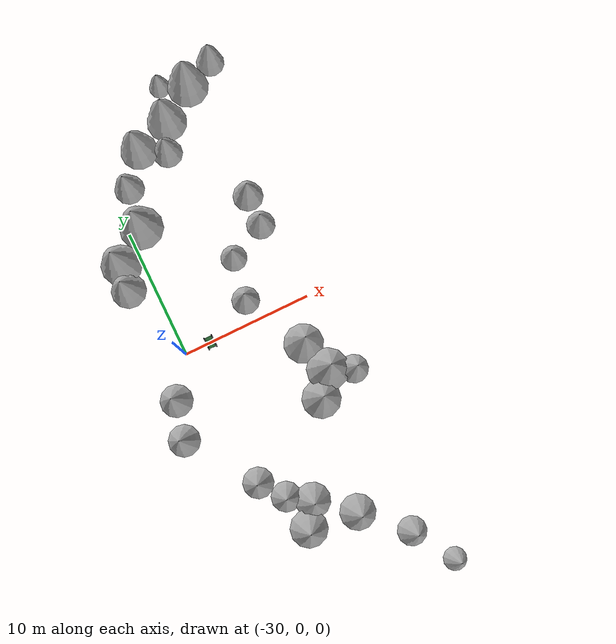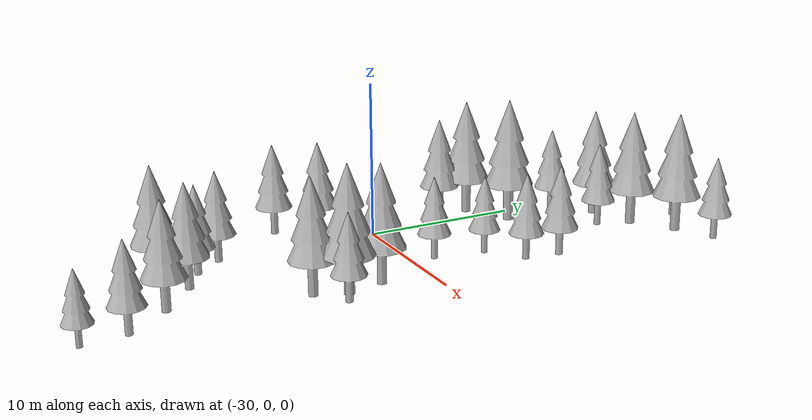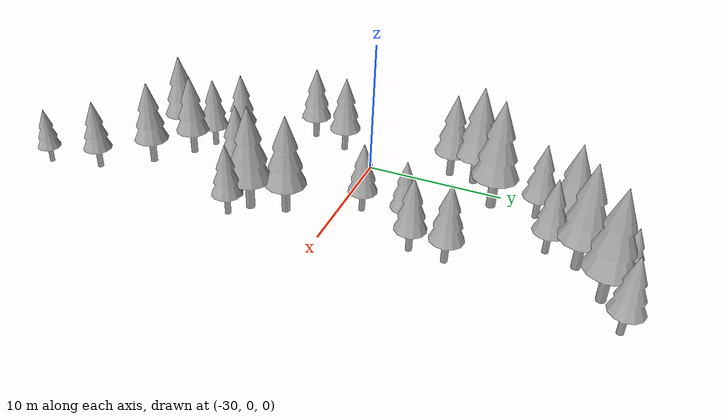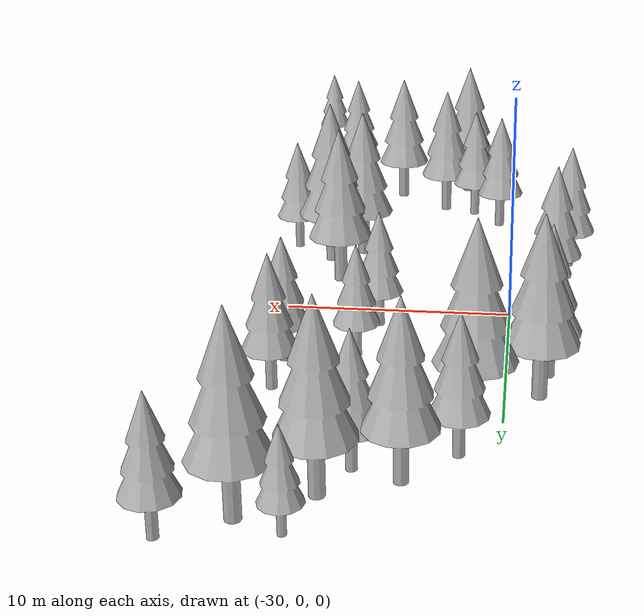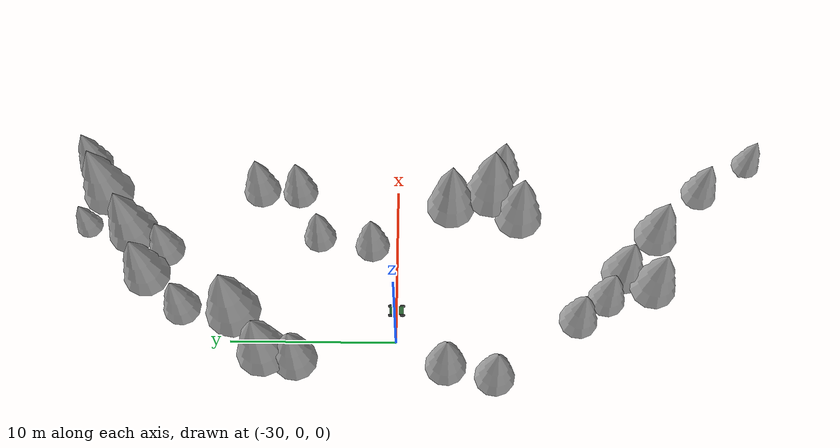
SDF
<sdf version="1.9">
 <world name="nomad_forest">
  <model name="tree_005">
   <static>true</static>
   <pose>-23.74728719564652 4.71142771278582 0.009430678626121328 0 0 5.68341908159201</pose>
   <link name="link">
    <visual name="visual">
     <geometry>
      <mesh>
       <uri>../assets/models/pine_tree.obj</uri>
       <scale>1.1037293258001493 1.1037293258001493 1.1037293258001493</scale>
      </mesh>
     </geometry>
    </visual>
    <collision name="trunk">
     <pose>0 0 1.765966921280239 0 0 0</pose>
     <geometry>
      <cylinder><radius>0.22074586516002986</radius><length>3.531933842560478</length></cylinder>
     </geometry>
    </collision>
   </link>
  </model>
  <model name="tree_010">
   <static>true</static>
   <pose>-31.69071476683939 5.799187152429241 -0.02215507995898214 0 0 1.699551294341331</pose>
   <link name="link">
    <visual name="visual">
     <geometry>
      <mesh>
       <uri>../assets/models/pine_tree.obj</uri>
       <scale>1.4601741965381356 1.4601741965381356 1.4601741965381356</scale>
      </mesh>
     </geometry>
    </visual>
    <collision name="trunk">
     <pose>0 0 2.336278714461017 0 0 0</pose>
     <geometry>
      <cylinder><radius>0.29203483930762714</radius><length>4.672557428922034</length></cylinder>
     </geometry>
    </collision>
   </link>
  </model>
  <model name="tree_027">
   <static>true</static>
   <pose>-32.656983271442016 -5.753634908888614 0.21888108581349097 0 0 2.712591995568711</pose>
   <link name="link">
    <visual name="visual">
     <geometry>
      <mesh>
       <uri>../assets/models/pine_tree.obj</uri>
       <scale>1.3163363295710189 1.3163363295710189 1.3163363295710189</scale>
      </mesh>
     </geometry>
    </visual>
    <collision name="trunk">
     <pose>0 0 2.1061381273136304 0 0 0</pose>
     <geometry>
      <cylinder><radius>0.2632672659142038</radius><length>4.212276254627261</length></cylinder>
     </geometry>
    </collision>
   </link>
  </model>
  <model name="tree_033">
   <static>true</static>
   <pose>-23.739253999120052 -15.622844189202766 0.1153574259995338 0 0 1.2297393752088968</pose>
   <link name="link">
    <visual name="visual">
     <geometry>
      <mesh>
       <uri>../assets/models/pine_tree.obj</uri>
       <scale>1.4612864012952456 1.4612864012952456 1.4612864012952456</scale>
      </mesh>
     </geometry>
    </visual>
    <collision name="trunk">
     <pose>0 0 2.338058242072393 0 0 0</pose>
     <geometry>
      <cylinder><radius>0.2922572802590491</radius><length>4.676116484144786</length></cylinder>
     </geometry>
    </collision>
   </link>
  </model>
  <model name="tree_037">
   <static>true</static>
   <pose>-26.236115699963612 -13.504457012007546 0.16057850078164362 0 0 3.585415213021652</pose>
   <link name="link">
    <visual name="visual">
     <geometry>
      <mesh>
       <uri>../assets/models/pine_tree.obj</uri>
       <scale>1.437822450414941 1.437822450414941 1.437822450414941</scale>
      </mesh>
     </geometry>
    </visual>
    <collision name="trunk">
     <pose>0 0 2.300515920663906 0 0 0</pose>
     <geometry>
      <cylinder><radius>0.28756449008298823</radius><length>4.601031841327812</length></cylinder>
     </geometry>
    </collision>
   </link>
  </model>
  <model name="tree_042">
   <static>true</static>
   <pose>-29.18652233858538 -10.725371664027968 0.35534283526409133 0 0 1.710666110183999</pose>
   <link name="link">
    <visual name="visual">
     <geometry>
      <mesh>
       <uri>../assets/models/pine_tree.obj</uri>
       <scale>1.2694490893673749 1.2694490893673749 1.2694490893673749</scale>
      </mesh>
     </geometry>
    </visual>
    <collision name="trunk">
     <pose>0 0 2.0311185429878 0 0 0</pose>
     <geometry><cylinder><radius>0.253889817873475</radius><length>4.0622370859756</length></cylinder></geometry>
    </collision>
   </link>
  </model>
  <model name="tree_050">
   <static>true</static>
   <pose>-22.528222273151854 -7.353233757469077 -0.10902726072797081 0 0 5.37809941848425</pose>
   <link name="link">
    <visual name="visual">
     <geometry>
      <mesh>
       <uri>../assets/models/pine_tree.obj</uri>
       <scale>1.6044228122951985 1.6044228122951985 1.6044228122951985</scale>
      </mesh>
     </geometry>
    </visual>
    <collision name="trunk">
     <pose>0 0 2.567076499672318 0 0 0</pose>
     <geometry>
      <cylinder><radius>0.32088456245903973</radius><length>5.134152999344636</length></cylinder>
     </geometry>
    </collision>
   </link>
  </model>
  <model name="tree_053">
   <static>true</static>
   <pose>-19.454563290203577 -6.444492305446776 0.4661522673060686 0 0 1.751435295693052</pose>
   <link name="link">
    <visual name="visual">
     <geometry>
      <mesh>
       <uri>../assets/models/pine_tree.obj</uri>
       <scale>1.1809182876905497 1.1809182876905497 1.1809182876905497</scale>
      </mesh>
     </geometry>
    </visual>
    <collision name="trunk">
     <pose>0 0 1.8894692603048797 0 0 0</pose>
     <geometry>
      <cylinder><radius>0.23618365753810996</radius><length>3.7789385206097594</length></cylinder>
     </geometry>
    </collision>
   </link>
  </model>
  <model name="tree_054">
   <static>true</static>
   <pose>-28.481551397186305 12.689320493782844 0.05267729503384749 0 0 4.343758265578293</pose>
   <link name="link">
    <visual name="visual">
     <geometry>
      <mesh>
       <uri>../assets/models/pine_tree.obj</uri>
       <scale>1.2595461972461752 1.2595461972461752 1.2595461972461752</scale>
      </mesh>
     </geometry>
    </visual>
    <collision name="trunk">
     <pose>0 0 2.0152739155938804 0 0 0</pose>
     <geometry>
      <cylinder><radius>0.25190923944923505</radius><length>4.030547831187761</length></cylinder>
     </geometry>
    </collision>
   </link>
  </model>
  <model name="tree_059">
   <static>true</static>
   <pose>-31.964217781927935 -2.936461379875759 0.0 0 0 5.911413301086224</pose>
   <link name="link">
    <visual name="visual">
     <geometry>
      <mesh>
       <uri>../assets/models/pine_tree.obj</uri>
       <scale>1.3568447631971734 1.3568447631971734 1.3568447631971734</scale>
      </mesh>
     </geometry>
    </visual>
    <collision name="trunk">
     <pose>0 0 2.1709516211154773 0 0 0</pose>
     <geometry>
      <cylinder><radius>0.27136895263943467</radius><length>4.341903242230955</length></cylinder>
     </geometry>
    </collision>
   </link>
  </model>
  <model name="tree_066">
   <static>true</static>
   <pose>-24.32741554638034 1.4943120799815333 0.0 0 0 0.05663431140513494</pose>
   <link name="link">
    <visual name="visual">
     <geometry>
      <mesh>
       <uri>../assets/models/pine_tree.obj</uri>
       <scale>1.16634691332975 1.16634691332975 1.16634691332975</scale>
      </mesh>
     </geometry>
    </visual>
    <collision name="trunk">
     <pose>0 0 1.8661550613276 0 0 0</pose>
     <geometry><cylinder><radius>0.23326938266595</radius><length>3.7323101226552</length></cylinder></geometry>
    </collision>
   </link>
  </model>
  <model name="tree_102">
   <static>true</static>
   <pose>-20.918706636194234 6.006033082981453 0.3098943282150593 0 0 6.253051255335334</pose>
   <link name="link">
    <visual name="visual">
     <geometry>
      <mesh>
       <uri>../assets/models/pine_tree.obj</uri>
       <scale>1.198435194205103 1.198435194205103 1.198435194205103</scale>
      </mesh>
     </geometry>
    </visual>
    <collision name="trunk">
     <pose>0 0 1.9174963107281648 0 0 0</pose>
     <geometry>
      <cylinder><radius>0.2396870388410206</radius><length>3.8349926214563297</length></cylinder>
     </geometry>
    </collision>
   </link>
  </model>
  <model name="tree_106">
   <static>true</static>
   <pose>-19.057626697485098 -21.429688175406504 1.1408397657122222 0 0 1.000990727459679</pose>
   <link name="link">
    <visual name="visual">
     <geometry>
      <mesh>
       <uri>../assets/models/pine_tree.obj</uri>
       <scale>0.9429300864191067 0.9429300864191067 0.9429300864191067</scale>
      </mesh>
     </geometry>
    </visual>
    <collision name="trunk">
     <pose>0 0 1.5086881382705708 0 0 0</pose>
     <geometry>
      <cylinder><radius>0.18858601728382135</radius><length>3.0173762765411416</length></cylinder>
     </geometry>
    </collision>
   </link>
  </model>
  <model name="tree_132">
   <static>true</static>
   <pose>-23.159342853530227 18.844382334908275 0.38741092598045135 0 0 2.6802246936426855</pose>
   <link name="link">
    <visual name="visual">
     <geometry>
      <mesh>
       <uri>../assets/models/pine_tree.obj</uri>
       <scale>0.8939544678904451 0.8939544678904451 0.8939544678904451</scale>
      </mesh>
     </geometry>
    </visual>
    <collision name="trunk">
     <pose>0 0 1.4303271486247122 0 0 0</pose>
     <geometry>
      <cylinder><radius>0.17879089357808903</radius><length>2.8606542972494244</length></cylinder>
     </geometry>
    </collision>
   </link>
  </model>
  <model name="tree_149">
   <static>true</static>
   <pose>-21.290001374066875 17.669566322876655 0.09880520469758874 0 0 1.309578482517985</pose>
   <link name="link">
    <visual name="visual">
     <geometry>
      <mesh>
       <uri>../assets/models/pine_tree.obj</uri>
       <scale>1.727077925911875 1.727077925911875 1.727077925911875</scale>
      </mesh>
     </geometry>
    </visual>
    <collision name="trunk">
     <pose>0 0 2.7633246814590002 0 0 0</pose>
     <geometry>
      <cylinder><radius>0.34541558518237503</radius><length>5.5266493629180005</length></cylinder>
     </geometry>
    </collision>
   </link>
  </model>
  <model name="tree_169">
   <static>true</static>
   <pose>-28.890428150434044 9.546520334025303 -0.16239685023295294 0 0 1.6575078633481515</pose>
   <link name="link">
    <visual name="visual">
     <geometry>
      <mesh>
       <uri>../assets/models/pine_tree.obj</uri>
       <scale>1.831440181913472 1.831440181913472 1.831440181913472</scale>
      </mesh>
     </geometry>
    </visual>
    <collision name="trunk">
     <pose>0 0 2.9303042910615553 0 0 0</pose>
     <geometry>
      <cylinder><radius>0.3662880363826944</radius><length>5.860608582123111</length></cylinder>
     </geometry>
    </collision>
   </link>
  </model>
  <model name="tree_187">
   <static>true</static>
   <pose>-21.205003084000232 -5.659460622533775 0.1432419591692561 0 0 3.2308542033279815</pose>
   <link name="link">
    <visual name="visual">
     <geometry>
      <mesh>
       <uri>../assets/models/pine_tree.obj</uri>
       <scale>1.7431405728085718 1.7431405728085718 1.7431405728085718</scale>
      </mesh>
     </geometry>
    </visual>
    <collision name="trunk">
     <pose>0 0 2.789024916493715 0 0 0</pose>
     <geometry><cylinder><radius>0.3486281145617144</radius><length>5.57804983298743</length></cylinder></geometry>
    </collision>
   </link>
  </model>
  <model name="tree_191">
   <static>true</static>
   <pose>-26.60471211196358 14.85861522068194 0.14817895730097064 0 0 2.9267937099276815</pose>
   <link name="link">
    <visual name="visual">
     <geometry>
      <mesh>
       <uri>../assets/models/pine_tree.obj</uri>
       <scale>1.5670582890273161 1.5670582890273161 1.5670582890273161</scale>
      </mesh>
     </geometry>
    </visual>
    <collision name="trunk">
     <pose>0 0 2.507293262443706 0 0 0</pose>
     <geometry>
      <cylinder><radius>0.31341165780546326</radius><length>5.014586524887412</length></cylinder>
     </geometry>
    </collision>
   </link>
  </model>
  <model name="tree_193">
   <static>true</static>
   <pose>-21.944750474128845 -3.2443358374040088 0.08017625818207312 0 0 3.959908846160471</pose>
   <link name="link">
    <visual name="visual">
     <geometry>
      <mesh>
       <uri>../assets/models/pine_tree.obj</uri>
       <scale>1.635050891167773 1.635050891167773 1.635050891167773</scale>
      </mesh>
     </geometry>
    </visual>
    <collision name="trunk">
     <pose>0 0 2.616081425868437 0 0 0</pose>
     <geometry>
      <cylinder><radius>0.3270101782335546</radius><length>5.232162851736874</length></cylinder>
     </geometry>
    </collision>
   </link>
  </model>
  <model name="tree_195">
   <static>true</static>
   <pose>-27.820192577309534 -12.461604070276303 0.3143378219788374 0 0 3.2297304472959834</pose>
   <link name="link">
    <visual name="visual">
     <geometry>
      <mesh>
       <uri>../assets/models/pine_tree.obj</uri>
       <scale>1.2323164086703433 1.2323164086703433 1.2323164086703433</scale>
      </mesh>
     </geometry>
    </visual>
    <collision name="trunk">
     <pose>0 0 1.9717062538725494 0 0 0</pose>
     <geometry>
      <cylinder><radius>0.24646328173406867</radius><length>3.9434125077450988</length></cylinder>
     </geometry>
    </collision>
   </link>
  </model>
  <model name="tree_201">
   <static>true</static>
   <pose>-18.919462968653793 18.92948253076589 0.06176844918102018 0 0 3.1053862988889263</pose>
   <link name="link">
    <visual name="visual">
     <geometry>
      <mesh>
       <uri>../assets/models/pine_tree.obj</uri>
       <scale>1.1886053868972941 1.1886053868972941 1.1886053868972941</scale>
      </mesh>
     </geometry>
    </visual>
    <collision name="trunk">
     <pose>0 0 1.9017686190356706 0 0 0</pose>
     <geometry>
      <cylinder><radius>0.23772107737945883</radius><length>3.8035372380713413</length></cylinder>
     </geometry>
    </collision>
   </link>
  </model>
  <model name="tree_209">
   <static>true</static>
   <pose>-23.832787632649236 15.938286187444312 0.09290860907922273 0 0 4.59807876183276</pose>
   <link name="link">
    <visual name="visual">
     <geometry>
      <mesh>
       <uri>../assets/models/pine_tree.obj</uri>
       <scale>1.6708734816083899 1.6708734816083899 1.6708734816083899</scale>
      </mesh>
     </geometry>
    </visual>
    <collision name="trunk">
     <pose>0 0 2.673397570573424 0 0 0</pose>
     <geometry><cylinder><radius>0.334174696321678</radius><length>5.346795141146848</length></cylinder></geometry>
    </collision>
   </link>
  </model>
  <model name="tree_219">
   <static>true</static>
   <pose>-31.35182375927484 7.682800255087464 -0.027776944971528297 0 0 3.2952240078451007</pose>
   <link name="link">
    <visual name="visual">
     <geometry>
      <mesh>
       <uri>../assets/models/pine_tree.obj</uri>
       <scale>1.7078063317035546 1.7078063317035546 1.7078063317035546</scale>
      </mesh>
     </geometry>
    </visual>
    <collision name="trunk">
     <pose>0 0 2.7324901307256875 0 0 0</pose>
     <geometry>
      <cylinder><radius>0.34156126634071093</radius><length>5.464980261451375</length></cylinder>
     </geometry>
    </collision>
   </link>
  </model>
  <model name="tree_223">
   <static>true</static>
   <pose>-20.82746606356558 8.359626376795788 0.21306184891333665 0 0 3.751745175512626</pose>
   <link name="link">
    <visual name="visual">
     <geometry>
      <mesh>
       <uri>../assets/models/pine_tree.obj</uri>
       <scale>1.2654663257973147 1.2654663257973147 1.2654663257973147</scale>
      </mesh>
     </geometry>
    </visual>
    <collision name="trunk">
     <pose>0 0 2.0247461212757036 0 0 0</pose>
     <geometry>
      <cylinder><radius>0.25309326515946295</radius><length>4.049492242551407</length></cylinder>
     </geometry>
    </collision>
   </link>
  </model>
  <model name="tree_225">
   <static>true</static>
   <pose>-24.75265672608075 13.95472760592856 0.016434496460247396 0 0 0.65510919115056</pose>
   <link name="link">
    <visual name="visual">
     <geometry>
      <mesh>
       <uri>../assets/models/pine_tree.obj</uri>
       <scale>1.2242497348314314 1.2242497348314314 1.2242497348314314</scale>
      </mesh>
     </geometry>
    </visual>
    <collision name="trunk">
     <pose>0 0 1.9587995757302903 0 0 0</pose>
     <geometry>
      <cylinder><radius>0.24484994696628629</radius><length>3.9175991514605806</length></cylinder>
     </geometry>
    </collision>
   </link>
  </model>
  <model name="tree_227">
   <static>true</static>
   <pose>-20.869831322491304 -18.468411582610127 0.45367941695691116 0 0 4.410172546910359</pose>
   <link name="link">
    <visual name="visual">
     <geometry>
      <mesh>
       <uri>../assets/models/pine_tree.obj</uri>
       <scale>1.1961725272957475 1.1961725272957475 1.1961725272957475</scale>
      </mesh>
     </geometry>
    </visual>
    <collision name="trunk">
     <pose>0 0 1.913876043673196 0 0 0</pose>
     <geometry>
      <cylinder><radius>0.2392345054591495</radius><length>3.827752087346392</length></cylinder>
     </geometry>
    </collision>
   </link>
  </model>
  <model name="tree_230">
   <static>true</static>
   <pose>-27.337269116462902 -15.092706891975292 0.7383270753649412 0 0 2.2034127779739237</pose>
   <link name="link">
    <visual name="visual">
     <geometry>
      <mesh>
       <uri>../assets/models/pine_tree.obj</uri>
       <scale>1.5140564023305885 1.5140564023305885 1.5140564023305885</scale>
      </mesh>
     </geometry>
    </visual>
    <collision name="trunk">
     <pose>0 0 2.4224902437289417 0 0 0</pose>
     <geometry>
      <cylinder><radius>0.3028112804661177</radius><length>4.8449804874578835</length></cylinder>
     </geometry>
    </collision>
   </link>
  </model>
  <model name="nomad_vehicle" canonical_link="base_link">
   <static>false</static>
   <link name="base_link">
    <pose relative_to="__model__">0 0 0 0 0 0</pose>
    <inertial>
     <pose>0 0 0.2 0 0 0</pose>
     <mass>30</mass>
     <inertia><ixx>0.661</ixx><iyy>1.84225</iyy><izz>2.43125</izz><ixy>0</ixy><ixz>0</ixz><iyz>0</iyz></inertia>
    </inertial>
    <visual name="base_link_visual">
     <pose>0 0 0.2 0 0 0</pose>
     <geometry><box><size>0.85 0.5 0.12</size></box></geometry>
     <material><ambient>0.15 0.38 0.18 1</ambient><diffuse>0.15 0.38 0.18 1</diffuse></material>
    </visual>
    <collision name="base_link_collision">
     <pose>0 0 0.2 0 0 0</pose>
     <geometry><box><size>0.85 0.5 0.12</size></box></geometry>
    </collision>
    <sensor name="oak_rgb" type="rgbd_camera">
     <pose relative_to="base_link">0.46 0 0.29 0 0 0</pose>
     <always_on>true</always_on>
     <update_rate>30</update_rate>
     <visualize>false</visualize>
     <topic>/nomad/raw/oak/rgbd</topic>
     <gz_frame_id>oak_rgb_optical_frame</gz_frame_id>
     <camera>
      <optical_frame_id>oak_rgb_optical_frame</optical_frame_id>
      <horizontal_fov>1.20427718387609</horizontal_fov>
      <image><width>640</width><height>480</height><format>R8G8B8</format></image>
      <clip><near>0.05</near><far>40</far></clip>
      <depth_camera><clip><near>0.4</near><far>8</far></clip></depth_camera>
      <lens>
       <type>gnomonical</type>
       <intrinsics><fx>465.602889175182</fx><fy>471.026521321236</fy><cx>320</cx><cy>240</cy><s>0</s></intrinsics>
       <projection>
        <p_fx>465.602889175182</p_fx>
        <p_fy>471.026521321236</p_fy>
        <p_cx>320</p_cx>
        <p_cy>240</p_cy>
        <tx>0</tx>
        <ty>0</ty>
       </projection>
      </lens>
     </camera>
    </sensor>
    <sensor name="oak_left" type="camera">
     <pose relative_to="base_link">0.46 0.0375 0.29 0 0 0</pose>
     <always_on>true</always_on>
     <update_rate>30</update_rate>
     <visualize>false</visualize>
     <topic>/nomad/raw/oak/left/image_raw</topic>
     <gz_frame_id>oak_left_optical_frame</gz_frame_id>
     <camera>
      <optical_frame_id>oak_left_optical_frame</optical_frame_id>
      <camera_info_topic>/nomad/raw/oak/left/camera_info</camera_info_topic>
      <horizontal_fov>1.27409035395586</horizontal_fov>
      <image><width>640</width><height>480</height><format>L8</format></image>
      <clip><near>0.05</near><far>40</far></clip>
      <lens>
       <type>gnomonical</type>
       <intrinsics><fx>432.455180142659</fx><fy>432.971461265142</fy><cx>320</cx><cy>240</cy><s>0</s></intrinsics>
       <projection>
        <p_fx>432.455180142659</p_fx>
        <p_fy>432.971461265142</p_fy>
        <p_cx>320</p_cx>
        <p_cy>240</p_cy>
        <tx>0</tx>
        <ty>0</ty>
       </projection>
      </lens>
     </camera>
    </sensor>
    <sensor name="oak_right" type="camera">
     <pose relative_to="base_link">0.46 -0.0375 0.29 0 0 0</pose>
     <always_on>true</always_on>
     <update_rate>30</update_rate>
     <visualize>false</visualize>
     <topic>/nomad/raw/oak/right/image_raw</topic>
     <gz_frame_id>oak_right_optical_frame</gz_frame_id>
     <camera>
      <optical_frame_id>oak_right_optical_frame</optical_frame_id>
      <camera_info_topic>/nomad/raw/oak/right/camera_info</camera_info_topic>
      <horizontal_fov>1.27409035395586</horizontal_fov>
      <image><width>640</width><height>480</height><format>L8</format></image>
      <clip><near>0.05</near><far>40</far></clip>
      <lens>
       <type>gnomonical</type>
       <intrinsics><fx>432.455180142659</fx><fy>432.971461265142</fy><cx>320</cx><cy>240</cy><s>0</s></intrinsics>
       <projection>
        <p_fx>432.455180142659</p_fx>
        <p_fy>432.971461265142</p_fy>
        <p_cx>320</p_cx>
        <p_cy>240</p_cy>
        <tx>-32.4341385106994</tx>
        <ty>0</ty>
       </projection>
      </lens>
     </camera>
    </sensor>
    <sensor name="ydlidar_g2" type="gpu_lidar">
     <pose relative_to="base_link">0.15 0 0.38 0 0 0</pose>
     <topic>/nomad/raw/scan</topic>
     <gz_frame_id>scan</gz_frame_id>
     <always_on>true</always_on>
     <update_rate>10</update_rate>
     <visualize>false</visualize>
     <lidar>
      <scan>
       <horizontal>
        <samples>500</samples>
        <resolution>1</resolution>
        <min_angle>-3.14159265358979</min_angle>
        <max_angle>3.12902628297543</max_angle>
       </horizontal>
       <vertical>
        <samples>1</samples>
        <resolution>1</resolution>
        <min_angle>0</min_angle>
        <max_angle>0</max_angle>
       </vertical>
      </scan>
      <range><min>0.12</min><max>12</max><resolution>0.01</resolution></range>
      <noise><type>gaussian</type><mean>0</mean><stddev>0.01</stddev></noise>
     </lidar>
    </sensor>
    <sensor name="oak_imu" type="imu">
     <pose relative_to="base_link">0.46 0 0.29 0 0 0</pose>
     <always_on>true</always_on>
     <update_rate>200</update_rate>
     <topic>/nomad/raw/oak/imu</topic>
     <gz_frame_id>oak_imu_frame</gz_frame_id>
    </sensor>
   </link>
   <link name="front_left_steering_link">
    <pose relative_to="__model__">0.36 0.3 0.15 0 0 0</pose>
    <inertial>
     <mass>0.3</mass>
     <inertia>
      <ixx>8.6875e-05</ixx>
      <iyy>8.6875e-05</iyy>
      <izz>9.375e-05</izz>
      <ixy>0</ixy>
      <ixz>0</ixz>
      <iyz>0</iyz>
     </inertia>
    </inertial>
    <visual name="front_left_steering_link_visual">
     <geometry><cylinder><radius>0.025</radius><length>0.04</length></cylinder></geometry>
     <material><ambient>0.12 0.12 0.12 1</ambient><diffuse>0.12 0.12 0.12 1</diffuse></material>
    </visual>
   </link>
   <link name="front_left_wheel">
    <pose relative_to="__model__">0.36 0.3 0.15 0 0 0</pose>
    <inertial>
     <mass>1</mass>
     <inertia>
      <ixx>0.00615833333333333</ixx>
      <iyy>0.01125</iyy>
      <izz>0.00615833333333333</izz>
      <ixy>0</ixy>
      <ixz>0</ixz>
      <iyz>0</iyz>
     </inertia>
    </inertial>
    <visual name="front_left_wheel_visual">
     <pose>0 0 0 1.5707963267949 0 0</pose>
     <geometry><cylinder><radius>0.15</radius><length>0.08</length></cylinder></geometry>
     <material><ambient>0.12 0.12 0.12 1</ambient><diffuse>0.12 0.12 0.12 1</diffuse></material>
    </visual>
    <collision name="front_left_wheel_collision">
     <pose>0 0 0 1.5707963267949 0 0</pose>
     <geometry><cylinder><radius>0.15</radius><length>0.08</length></cylinder></geometry>
     <surface><friction><ode><mu>1</mu><mu2>1</mu2></ode></friction></surface>
    </collision>
   </link>
   <link name="front_right_steering_link">
    <pose relative_to="__model__">0.36 -0.3 0.15 0 0 0</pose>
    <inertial>
     <mass>0.3</mass>
     <inertia>
      <ixx>8.6875e-05</ixx>
      <iyy>8.6875e-05</iyy>
      <izz>9.375e-05</izz>
      <ixy>0</ixy>
      <ixz>0</ixz>
      <iyz>0</iyz>
     </inertia>
    </inertial>
    <visual name="front_right_steering_link_visual">
     <geometry><cylinder><radius>0.025</radius><length>0.04</length></cylinder></geometry>
     <material><ambient>0.12 0.12 0.12 1</ambient><diffuse>0.12 0.12 0.12 1</diffuse></material>
    </visual>
   </link>
   <link name="front_right_wheel">
    <pose relative_to="__model__">0.36 -0.3 0.15 0 0 0</pose>
    <inertial>
     <mass>1</mass>
     <inertia>
      <ixx>0.00615833333333333</ixx>
      <iyy>0.01125</iyy>
      <izz>0.00615833333333333</izz>
      <ixy>0</ixy>
      <ixz>0</ixz>
      <iyz>0</iyz>
     </inertia>
    </inertial>
    <visual name="front_right_wheel_visual">
     <pose>0 0 0 1.5707963267949 0 0</pose>
     <geometry><cylinder><radius>0.15</radius><length>0.08</length></cylinder></geometry>
     <material><ambient>0.12 0.12 0.12 1</ambient><diffuse>0.12 0.12 0.12 1</diffuse></material>
    </visual>
    <collision name="front_right_wheel_collision">
     <pose>0 0 0 1.5707963267949 0 0</pose>
     <geometry><cylinder><radius>0.15</radius><length>0.08</length></cylinder></geometry>
     <surface><friction><ode><mu>1</mu><mu2>1</mu2></ode></friction></surface>
    </collision>
   </link>
   <link name="rear_left_wheel">
    <pose relative_to="__model__">-0.36 0.3 0.15 0 0 0</pose>
    <inertial>
     <mass>1</mass>
     <inertia>
      <ixx>0.00615833333333333</ixx>
      <iyy>0.01125</iyy>
      <izz>0.00615833333333333</izz>
      <ixy>0</ixy>
      <ixz>0</ixz>
      <iyz>0</iyz>
     </inertia>
    </inertial>
    <visual name="rear_left_wheel_visual">
     <pose>0 0 0 1.5707963267949 0 0</pose>
     <geometry><cylinder><radius>0.15</radius><length>0.08</length></cylinder></geometry>
     <material><ambient>0.12 0.12 0.12 1</ambient><diffuse>0.12 0.12 0.12 1</diffuse></material>
    </visual>
    <collision name="rear_left_wheel_collision">
     <pose>0 0 0 1.5707963267949 0 0</pose>
     <geometry><cylinder><radius>0.15</radius><length>0.08</length></cylinder></geometry>
     <surface><friction><ode><mu>1</mu><mu2>1</mu2></ode></friction></surface>
    </collision>
   </link>
   <link name="rear_right_wheel">
    <pose relative_to="__model__">-0.36 -0.3 0.15 0 0 0</pose>
    <inertial>
     <mass>1</mass>
     <inertia>
      <ixx>0.00615833333333333</ixx>
      <iyy>0.01125</iyy>
      <izz>0.00615833333333333</izz>
      <ixy>0</ixy>
      <ixz>0</ixz>
      <iyz>0</iyz>
     </inertia>
    </inertial>
    <visual name="rear_right_wheel_visual">
     <pose>0 0 0 1.5707963267949 0 0</pose>
     <geometry><cylinder><radius>0.15</radius><length>0.08</length></cylinder></geometry>
     <material><ambient>0.12 0.12 0.12 1</ambient><diffuse>0.12 0.12 0.12 1</diffuse></material>
    </visual>
    <collision name="rear_right_wheel_collision">
     <pose>0 0 0 1.5707963267949 0 0</pose>
     <geometry><cylinder><radius>0.15</radius><length>0.08</length></cylinder></geometry>
     <surface><friction><ode><mu>1</mu><mu2>1</mu2></ode></friction></surface>
    </collision>
   </link>
   <joint name="front_left_steering_joint" type="revolute">
    <parent>base_link</parent>
    <child>front_left_steering_link</child>
    <pose relative_to="front_left_steering_link">0 0 0 0 0 0</pose>
    <axis>
     <xyz>0 0 1</xyz>
     <limit><lower>-0.55</lower><upper>0.55</upper><effort>12</effort><velocity>2</velocity></limit>
     <dynamics><damping>0.02</damping></dynamics>
    </axis>
   </joint>
   <joint name="front_left_wheel_joint" type="revolute">
    <parent>front_left_steering_link</parent>
    <child>front_left_wheel</child>
    <pose relative_to="front_left_wheel">0 0 0 0 0 0</pose>
    <axis>
     <xyz>0 1 0</xyz>
     <limit><lower>-1e+16</lower><upper>1e+16</upper><effort>20</effort><velocity>20</velocity></limit>
     <dynamics><damping>0.02</damping></dynamics>
    </axis>
   </joint>
   <joint name="front_right_steering_joint" type="revolute">
    <parent>base_link</parent>
    <child>front_right_steering_link</child>
    <pose relative_to="front_right_steering_link">0 0 0 0 0 0</pose>
    <axis>
     <xyz>0 0 1</xyz>
     <limit><lower>-0.55</lower><upper>0.55</upper><effort>12</effort><velocity>2</velocity></limit>
     <dynamics><damping>0.02</damping></dynamics>
    </axis>
   </joint>
   <joint name="front_right_wheel_joint" type="revolute">
    <parent>front_right_steering_link</parent>
    <child>front_right_wheel</child>
    <pose relative_to="front_right_wheel">0 0 0 0 0 0</pose>
    <axis>
     <xyz>0 1 0</xyz>
     <limit><lower>-1e+16</lower><upper>1e+16</upper><effort>20</effort><velocity>20</velocity></limit>
     <dynamics><damping>0.02</damping></dynamics>
    </axis>
   </joint>
   <joint name="rear_left_wheel_joint" type="revolute">
    <parent>base_link</parent>
    <child>rear_left_wheel</child>
    <pose relative_to="rear_left_wheel">0 0 0 0 0 0</pose>
    <axis>
     <xyz>0 1 0</xyz>
     <limit><lower>-1e+16</lower><upper>1e+16</upper><effort>20</effort><velocity>20</velocity></limit>
     <dynamics><damping>0.02</damping></dynamics>
    </axis>
   </joint>
   <joint name="rear_right_wheel_joint" type="revolute">
    <parent>base_link</parent>
    <child>rear_right_wheel</child>
    <pose relative_to="rear_right_wheel">0 0 0 0 0 0</pose>
    <axis>
     <xyz>0 1 0</xyz>
     <limit><lower>-1e+16</lower><upper>1e+16</upper><effort>20</effort><velocity>20</velocity></limit>
     <dynamics><damping>0.02</damping></dynamics>
    </axis>
   </joint>
   <frame name="oak_rgb_optical_frame" attached_to="base_link">
    <pose relative_to="base_link">0.46 0 0.29 -1.5707963267949 0 -1.5707963267949</pose>
   </frame>
   <frame name="oak_depth_optical_frame" attached_to="base_link">
    <pose relative_to="base_link">0.46 0 0.29 -1.5707963267949 0 -1.5707963267949</pose>
   </frame>
   <frame name="oak_left_optical_frame" attached_to="base_link">
    <pose relative_to="base_link">0.46 0.0375 0.29 -1.5707963267949 0 -1.5707963267949</pose>
   </frame>
   <frame name="oak_right_optical_frame" attached_to="base_link">
    <pose relative_to="base_link">0.46 -0.0375 0.29 -1.5707963267949 0 -1.5707963267949</pose>
   </frame>
   <frame name="scan" attached_to="base_link"><pose relative_to="base_link">0.15 0 0.38 0 0 0</pose></frame>
   <frame name="oak_imu_frame" attached_to="base_link">
    <pose relative_to="base_link">0.46 0 0.29 0 0 0</pose>
   </frame>
   <plugin filename="gz-sim-ackermann-steering-system" name="gz::sim::systems::AckermannSteering">
    <left_joint>rear_left_wheel_joint</left_joint>
    <right_joint>rear_right_wheel_joint</right_joint>
    <left_steering_joint>front_left_steering_joint</left_steering_joint>
    <right_steering_joint>front_right_steering_joint</right_steering_joint>
    <wheel_base>0.72</wheel_base>
    <wheel_separation>0.6</wheel_separation>
    <kingpin_width>0.6</kingpin_width>
    <wheel_radius>0.15</wheel_radius>
    <steering_limit>0.55</steering_limit>
    <min_velocity>-1</min_velocity>
    <max_velocity>1</max_velocity>
    <min_acceleration>-0.6</min_acceleration>
    <max_acceleration>0.6</max_acceleration>
    <topic>/nomad/vehicle/cmd_vel</topic>
    <odom_topic>/nomad/vehicle/wheel_odom</odom_topic>
    <tf_topic>/nomad/vehicle/wheel_tf</tf_topic>
    <frame_id>odom</frame_id>
    <child_frame_id>base_link</child_frame_id>
    <odom_publish_frequency>50</odom_publish_frequency>
   </plugin>
   <plugin filename="gz-sim-odometry-publisher-system" name="gz::sim::systems::OdometryPublisher">
    <dimensions>3</dimensions>
    <odom_frame>odom</odom_frame>
    <robot_base_frame>base_link</robot_base_frame>
    <odom_topic>/nomad/vehicle/odom</odom_topic>
    <tf_topic>/nomad/vehicle/tf</tf_topic>
    <odom_publish_frequency>50</odom_publish_frequency>
    <gaussian_noise>0</gaussian_noise>
   </plugin>
   <plugin filename="gz-sim-joint-state-publisher-system" name="gz::sim::systems::JointStatePublisher">
    <topic>/nomad/vehicle/joint_states</topic>
    <update_rate>50</update_rate>
    <joint_name>front_left_steering_joint</joint_name>
    <joint_name>front_left_wheel_joint</joint_name>
    <joint_name>front_right_steering_joint</joint_name>
    <joint_name>front_right_wheel_joint</joint_name>
    <joint_name>rear_left_wheel_joint</joint_name>
    <joint_name>rear_right_wheel_joint</joint_name>
   </plugin>
   <pose>-28 0 0.03 0 0 -1.5707963267948966</pose>
  </model>
 </world>
</sdf>
